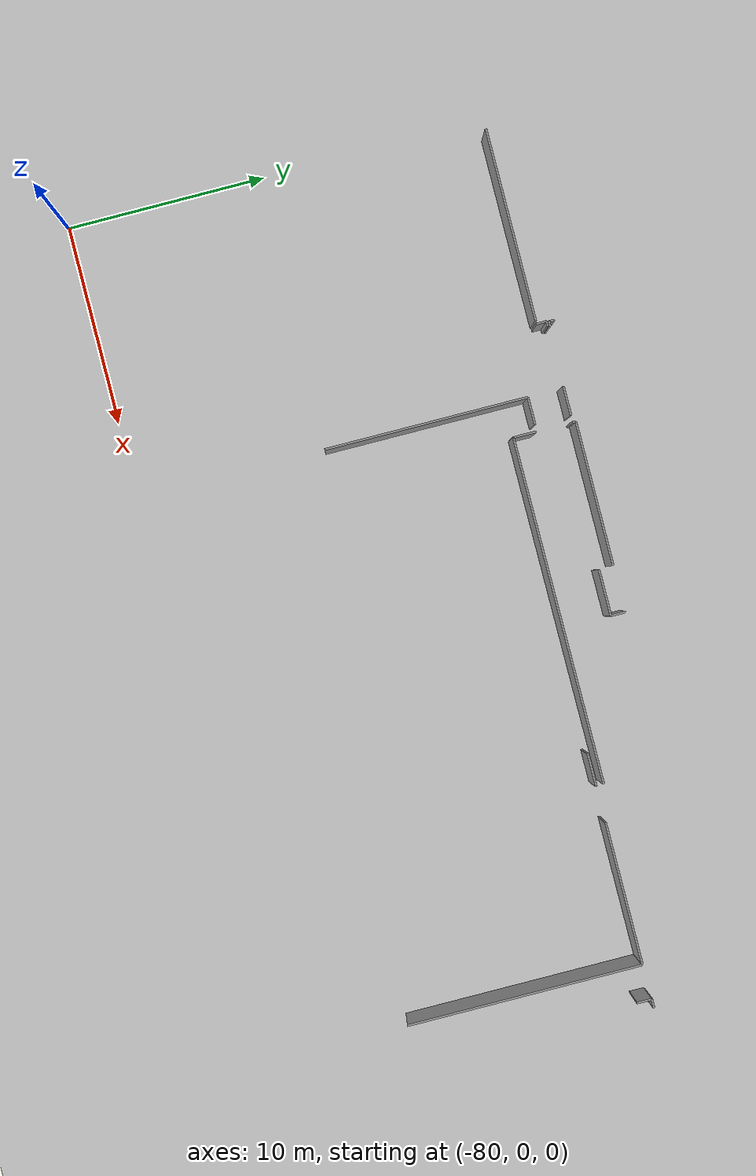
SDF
<sdf version="1.6">
 <world name="default">
  <model name="ground_plane">
   <static>1</static>
   <link name="link">
    <collision name="collision">
     <geometry><plane><normal>0 0 1</normal><size>100 100</size></plane></geometry>
     <surface><friction><ode><mu>100</mu><mu2>50</mu2></ode></friction></surface>
    </collision>
    <visual name="visual">
     <cast_shadows>0</cast_shadows>
     <geometry><plane><normal>0 0 1</normal><size>100 100</size></plane></geometry>
     <material>
      <script><uri>file://media/materials/scripts/gazebo.material</uri><name>Gazebo/Grey</name></script>
     </material>
    </visual>
   </link>
  </model>
  <model name="0510035740_A_40_1_103">
   <static>1</static>
   <link name="Wall_79">
    <collision name="Wall_79_Collision">
     <geometry><box><size>0.241365963846 0.1 2.5</size></box></geometry>
     <pose>0.120682981923 0 1.25 0 0 0</pose>
    </collision>
    <visual name="Wall_79_Visual">
     <pose>0.120682981923 0 1.25 0 0 0</pose>
     <geometry><box><size>0.241365963846 0.1 2.5</size></box></geometry>
     <material>
      <script><uri>file://media/materials/scripts/gazebo.material</uri><name>Gazebo/Grey</name></script>
      <ambient>1 1 1 1</ambient>
     </material>
    </visual>
    <pose>24.8997798265 -28.0915972412 0 0 0 3.14159265359</pose>
   </link>
   <link name="Wall_80">
    <collision name="Wall_80_Collision">
     <geometry><box><size>0.282481932451 0.1 2.5</size></box></geometry>
     <pose>0.141240966225 0 1.25 0 0 0</pose>
    </collision>
    <visual name="Wall_80_Visual">
     <pose>0.141240966225 0 1.25 0 0 0</pose>
     <geometry><box><size>0.282481932451 0.1 2.5</size></box></geometry>
     <material>
      <script><uri>file://media/materials/scripts/gazebo.material</uri><name>Gazebo/Grey</name></script>
      <ambient>1 1 1 1</ambient>
     </material>
    </visual>
    <pose>24.6584138627 -28.0915972412 0 0 0 1.57079632679</pose>
   </link>
   <link name="Wall_88">
    <collision name="Wall_88_Collision">
     <geometry><box><size>9.60387809877 0.1 2.5</size></box></geometry>
     <pose>4.80193904938 0 1.25 0 0 0</pose>
    </collision>
    <visual name="Wall_88_Visual">
     <pose>4.80193904938 0 1.25 0 0 0</pose>
     <geometry><box><size>9.60387809877 0.1 2.5</size></box></geometry>
     <material>
      <script><uri>file://media/materials/scripts/gazebo.material</uri><name>Gazebo/Grey</name></script>
      <ambient>1 1 1 1</ambient>
     </material>
    </visual>
    <pose>14.8816964144 -28.7050373407 0 0 0 0.0</pose>
   </link>
   <link name="Wall_94">
    <collision name="Wall_94_Collision">
     <geometry><box><size>0.515726223486 0.1 2.5</size></box></geometry>
     <pose>0.257863111743 0 1.25 0 0 0</pose>
    </collision>
    <visual name="Wall_94_Visual">
     <pose>0.257863111743 0 1.25 0 0 0</pose>
     <geometry><box><size>0.515726223486 0.1 2.5</size></box></geometry>
     <material>
      <script><uri>file://media/materials/scripts/gazebo.material</uri><name>Gazebo/Grey</name></script>
      <ambient>1 1 1 1</ambient>
     </material>
    </visual>
    <pose>24.6249119623 -28.7197578726 0 0 0 1.57079632679</pose>
   </link>
   <link name="Wall_95">
    <collision name="Wall_95_Collision">
     <geometry><box><size>0.241873568397 0.1 2.5</size></box></geometry>
     <pose>0.120936784198 0 1.25 0 0 0</pose>
    </collision>
    <visual name="Wall_95_Visual">
     <pose>0.120936784198 0 1.25 0 0 0</pose>
     <geometry><box><size>0.241873568397 0.1 2.5</size></box></geometry>
     <material>
      <script><uri>file://media/materials/scripts/gazebo.material</uri><name>Gazebo/Grey</name></script>
      <ambient>1 1 1 1</ambient>
     </material>
    </visual>
    <pose>24.6249119623 -28.2040316491 0 0 0 0.0</pose>
   </link>
   <link name="Wall_96">
    <collision name="Wall_96_Collision">
     <geometry><box><size>1.45860167636 0.1 2.5</size></box></geometry>
     <pose>0.729300838182 0 1.25 0 0 0</pose>
    </collision>
    <visual name="Wall_96_Visual">
     <pose>0.729300838182 0 1.25 0 0 0</pose>
     <geometry><box><size>1.45860167636 0.1 2.5</size></box></geometry>
     <material>
      <script><uri>file://media/materials/scripts/gazebo.material</uri><name>Gazebo/Grey</name></script>
      <ambient>1 1 1 1</ambient>
     </material>
    </visual>
    <pose>27.8624137865 -28.2040316491 0 0 0 0.0</pose>
   </link>
   <link name="Wall_97">
    <collision name="Wall_97_Collision">
     <geometry><box><size>1.3758621346 0.1 2.5</size></box></geometry>
     <pose>0.687931067302 0 1.25 0 0 0</pose>
    </collision>
    <visual name="Wall_97_Visual">
     <pose>0.687931067302 0 1.25 0 0 0</pose>
     <geometry><box><size>1.3758621346 0.1 2.5</size></box></geometry>
     <material>
      <script><uri>file://media/materials/scripts/gazebo.material</uri><name>Gazebo/Grey</name></script>
      <ambient>1 1 1 1</ambient>
     </material>
    </visual>
    <pose>29.3210154629 -29.9940990971 0 0 0 3.14159265359</pose>
   </link>
   <link name="Wall_98">
    <collision name="Wall_98_Collision">
     <geometry><box><size>10.1127516608 0.1 2.5</size></box></geometry>
     <pose>5.05637583041 0 1.25 0 0 0</pose>
    </collision>
    <visual name="Wall_98_Visual">
     <pose>5.05637583041 0 1.25 0 0 0</pose>
     <geometry><box><size>10.1127516608 0.1 2.5</size></box></geometry>
     <material>
      <script><uri>file://media/materials/scripts/gazebo.material</uri><name>Gazebo/Grey</name></script>
      <ambient>1 1 1 1</ambient>
     </material>
    </visual>
    <pose>27.9451533283 -29.9940990971 0 0 0 -1.57079632679</pose>
   </link>
   <link name="Wall_106">
    <collision name="Wall_106_Collision">
     <geometry><box><size>1.1309429389 0.1 2.5</size></box></geometry>
     <pose>0.565471469452 0 1.25 0 0 0</pose>
    </collision>
    <visual name="Wall_106_Visual">
     <pose>0.565471469452 0 1.25 0 0 0</pose>
     <geometry><box><size>1.1309429389 0.1 2.5</size></box></geometry>
     <material>
      <script><uri>file://media/materials/scripts/gazebo.material</uri><name>Gazebo/Grey</name></script>
      <ambient>1 1 1 1</ambient>
     </material>
    </visual>
    <pose>29.6560344663 -31.1587977386 0 0 0 1.57079632679</pose>
   </link>
   <link name="Wall_107">
    <collision name="Wall_107_Collision">
     <geometry><box><size>0.175631174533 0.1 2.5</size></box></geometry>
     <pose>0.0878155872667 0 1.25 0 0 0</pose>
    </collision>
    <visual name="Wall_107_Visual">
     <pose>0.0878155872667 0 1.25 0 0 0</pose>
     <geometry><box><size>0.175631174533 0.1 2.5</size></box></geometry>
     <material>
      <script><uri>file://media/materials/scripts/gazebo.material</uri><name>Gazebo/Grey</name></script>
      <ambient>1 1 1 1</ambient>
     </material>
    </visual>
    <pose>29.6560344663 -28.2261124471 0 0 0 1.57079632679</pose>
   </link>
   <link name="Wall_108">
    <collision name="Wall_108_Collision">
     <geometry><box><size>7.1686452669 0.1 2.5</size></box></geometry>
     <pose>3.58432263345 0 1.25 0 0 0</pose>
    </collision>
    <visual name="Wall_108_Visual">
     <pose>3.58432263345 0 1.25 0 0 0</pose>
     <geometry><box><size>7.1686452669 0.1 2.5</size></box></geometry>
     <material>
      <script><uri>file://media/materials/scripts/gazebo.material</uri><name>Gazebo/Grey</name></script>
      <ambient>1 1 1 1</ambient>
     </material>
    </visual>
    <pose>29.6560344663 -28.0504812726 0 0 0 0.0</pose>
   </link>
   <link name="Wall_110">
    <collision name="Wall_110_Collision">
     <geometry><box><size>2.30731648509 0.1 2.5</size></box></geometry>
     <pose>1.15365824255 0 1.25 0 0 0</pose>
    </collision>
    <visual name="Wall_110_Visual">
     <pose>1.15365824255 0 1.25 0 0 0</pose>
     <geometry><box><size>2.30731648509 0.1 2.5</size></box></geometry>
     <material>
      <script><uri>file://media/materials/scripts/gazebo.material</uri><name>Gazebo/Grey</name></script>
      <ambient>1 1 1 1</ambient>
     </material>
    </visual>
    <pose>36.8246797333 -28.7644270731 0 0 0 0.0</pose>
   </link>
   <link name="Wall_111">
    <collision name="Wall_111_Collision">
     <geometry><box><size>0.754554164578 0.1 2.5</size></box></geometry>
     <pose>0.377277082289 0 1.25 0 0 0</pose>
    </collision>
    <visual name="Wall_111_Visual">
     <pose>0.377277082289 0 1.25 0 0 0</pose>
     <geometry><box><size>0.754554164578 0.1 2.5</size></box></geometry>
     <material>
      <script><uri>file://media/materials/scripts/gazebo.material</uri><name>Gazebo/Grey</name></script>
      <ambient>1 1 1 1</ambient>
     </material>
    </visual>
    <pose>39.1319962183 -28.7644270731 0 0 0 1.57079632679</pose>
   </link>
   <link name="Wall_117">
    <collision name="Wall_117_Collision">
     <geometry><box><size>17.2103566116 0.1 2.5</size></box></geometry>
     <pose>8.60517830581 0 1.25 0 0 0</pose>
    </collision>
    <visual name="Wall_117_Visual">
     <pose>8.60517830581 0 1.25 0 0 0</pose>
     <geometry><box><size>17.2103566116 0.1 2.5</size></box></geometry>
     <material>
      <script><uri>file://media/materials/scripts/gazebo.material</uri><name>Gazebo/Grey</name></script>
      <ambient>1 1 1 1</ambient>
     </material>
    </visual>
    <pose>46.866366757 -31.1298642792 0 0 0 -3.1399114872</pose>
   </link>
   <link name="Wall_144">
    <collision name="Wall_144_Collision">
     <geometry><box><size>1.63981650095 0.1 2.5</size></box></geometry>
     <pose>0.819908250477 0 1.25 0 0 0</pose>
    </collision>
    <visual name="Wall_144_Visual">
     <pose>0.819908250477 0 1.25 0 0 0</pose>
     <geometry><box><size>1.63981650095 0.1 2.5</size></box></geometry>
     <material>
      <script><uri>file://media/materials/scripts/gazebo.material</uri><name>Gazebo/Grey</name></script>
      <ambient>1 1 1 1</ambient>
     </material>
    </visual>
    <pose>45.2557375177 -31.5070144604 0 0 0 0.0</pose>
   </link>
   <link name="Wall_145">
    <collision name="Wall_145_Collision">
     <geometry><box><size>7.0524038248 0.1 2.5</size></box></geometry>
     <pose>3.5262019124 0 1.25 0 0 0</pose>
    </collision>
    <visual name="Wall_145_Visual">
     <pose>3.5262019124 0 1.25 0 0 0</pose>
     <geometry><box><size>7.0524038248 0.1 2.5</size></box></geometry>
     <material>
      <script><uri>file://media/materials/scripts/gazebo.material</uri><name>Gazebo/Grey</name></script>
      <ambient>1 1 1 1</ambient>
     </material>
    </visual>
    <pose>48.6802916188 -31.5070144604 0 0 0 0.0</pose>
   </link>
   <link name="Wall_146">
    <collision name="Wall_146_Collision">
     <geometry><box><size>11.6497782403 0.1 2.5</size></box></geometry>
     <pose>5.82488912013 0 1.25 0 0 0</pose>
    </collision>
    <visual name="Wall_146_Visual">
     <pose>5.82488912013 0 1.25 0 0 0</pose>
     <geometry><box><size>11.6497782403 0.1 2.5</size></box></geometry>
     <material>
      <script><uri>file://media/materials/scripts/gazebo.material</uri><name>Gazebo/Grey</name></script>
      <ambient>1 1 1 1</ambient>
     </material>
    </visual>
    <pose>55.7326954436 -31.5070144604 0 0 0 -1.57079632679</pose>
   </link>
   <link name="Wall_150">
    <collision name="Wall_150_Collision">
     <geometry><box><size>0.734249982551 0.1 2.5</size></box></geometry>
     <pose>0.367124991276 0 1.25 0 0 0</pose>
    </collision>
    <visual name="Wall_150_Visual">
     <pose>0.367124991276 0 1.25 0 0 0</pose>
     <geometry><box><size>0.734249982551 0.1 2.5</size></box></geometry>
     <material>
      <script><uri>file://media/materials/scripts/gazebo.material</uri><name>Gazebo/Grey</name></script>
      <ambient>1 1 1 1</ambient>
     </material>
    </visual>
    <pose>57.436470118 -32.2201988541 0 0 0 1.57079632679</pose>
   </link>
   <link name="Wall_151">
    <collision name="Wall_151_Collision">
     <geometry><box><size>0.420550370234 0.1 2.5</size></box></geometry>
     <pose>0.210275185117 0 1.25 0 0 0</pose>
    </collision>
    <visual name="Wall_151_Visual">
     <pose>0.210275185117 0 1.25 0 0 0</pose>
     <geometry><box><size>0.420550370234 0.1 2.5</size></box></geometry>
     <material>
      <script><uri>file://media/materials/scripts/gazebo.material</uri><name>Gazebo/Grey</name></script>
      <ambient>1 1 1 1</ambient>
     </material>
    </visual>
    <pose>57.436470118 -31.4859488715 0 0 0 0.0</pose>
   </link>
   <pose>-93.95 49.6557238758 0 0 0 0</pose>
  </model>
 </world>
</sdf>
